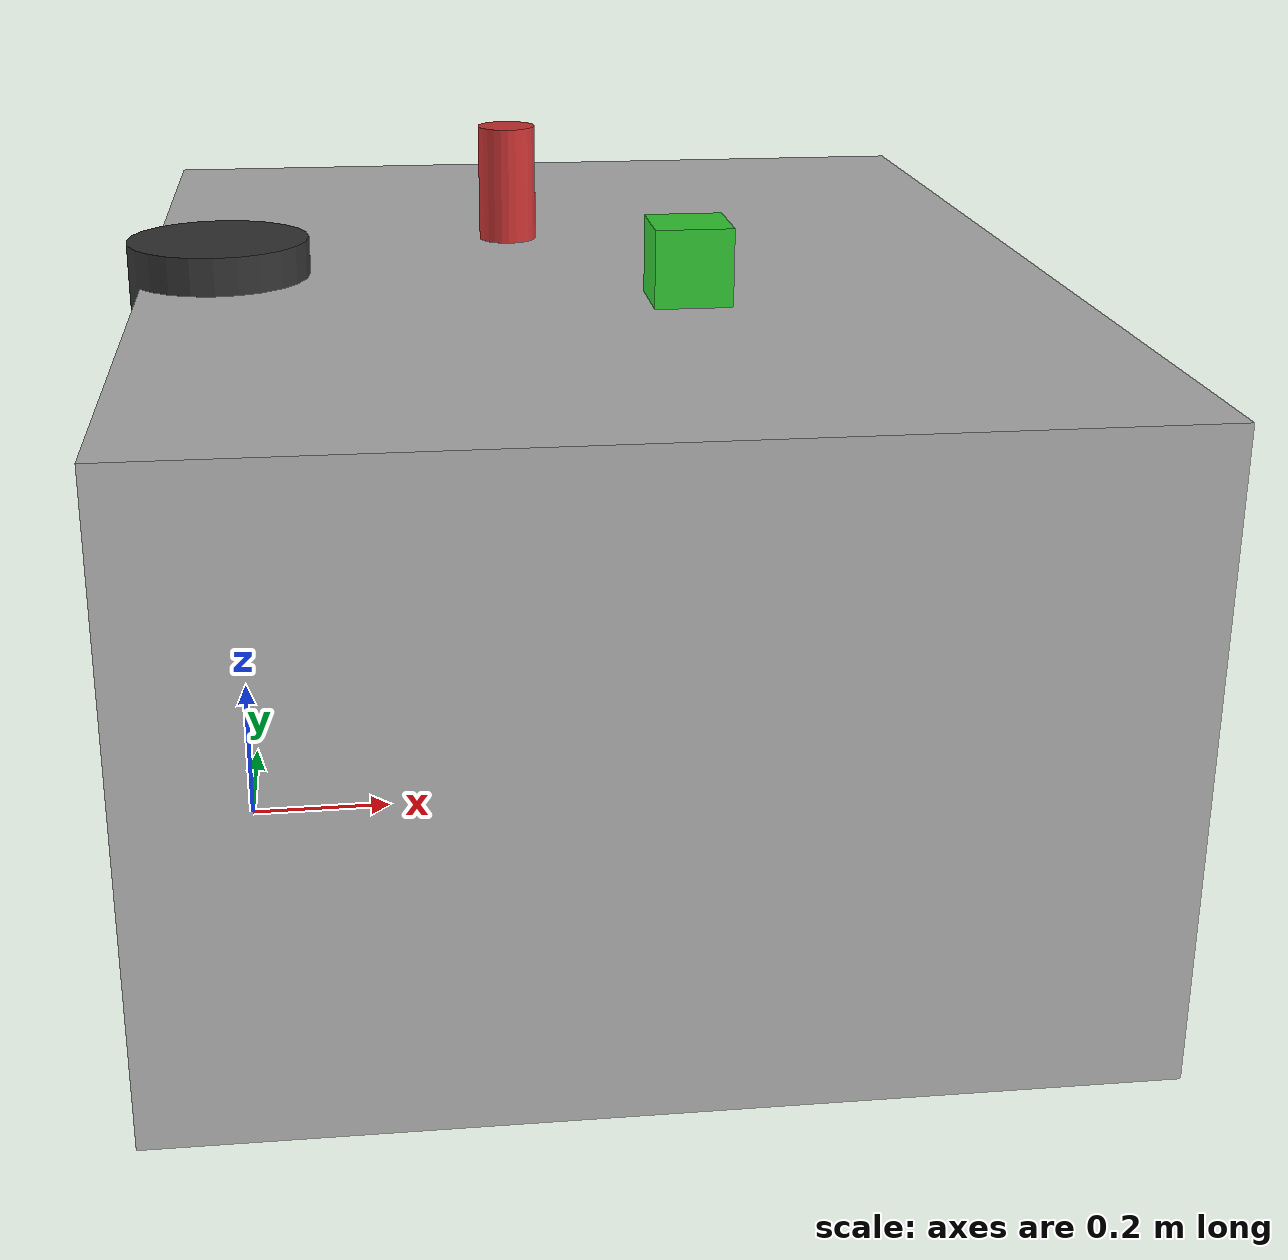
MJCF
<mujoco model="hospital_housekeeping_arm">
  <compiler angle="radian" coordinate="local"/>
  <option gravity="0 0 -9.81" timestep="0.002"/>
  <worldbody>
    <geom name="table" type="box" size="0.6 0.8 0.4" pos="0.5 0 0.4" rgba="0.7 0.7 0.7 1"/>
    <!-- Clutter objects on table -->
    <geom name="debris1" type="cylinder" size="0.04 0.08" pos="0.4 0.2 0.88" rgba="0.8 0.2 0.2 1" mass="0.3"/>
    <geom name="debris2" type="box" size="0.05 0.05 0.05" pos="0.6 -0.2 0.85" rgba="0.2 0.8 0.2 1" mass="0.2"/>
    <body name="arm_base" pos="0 0 0.8">
      <geom name="base_geom" type="cylinder" size="0.12 0.05" rgba="0.2 0.2 0.2 1" mass="10.0"/>
    </body>
  </worldbody>
</mujoco>
